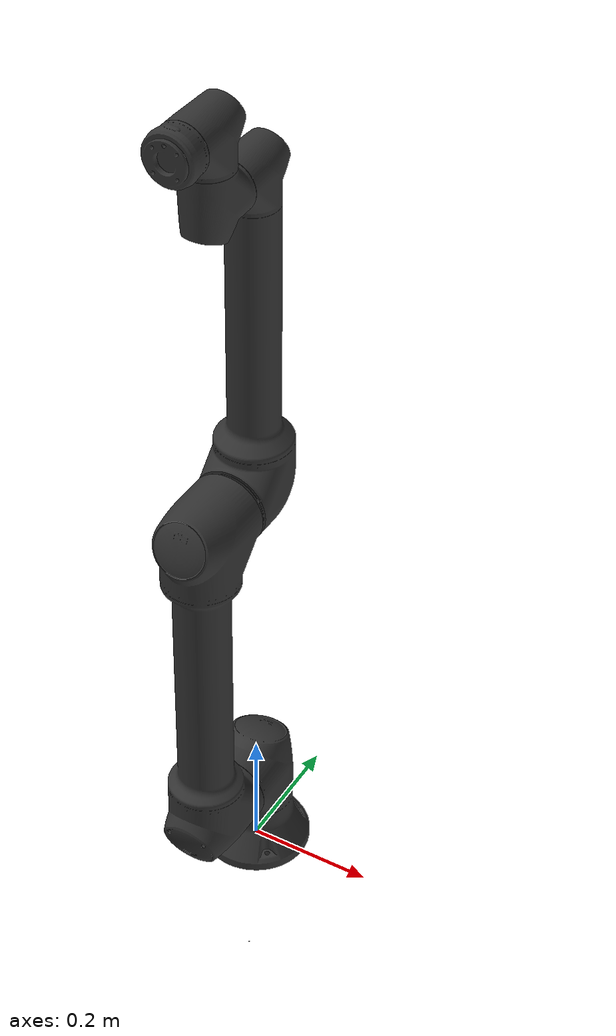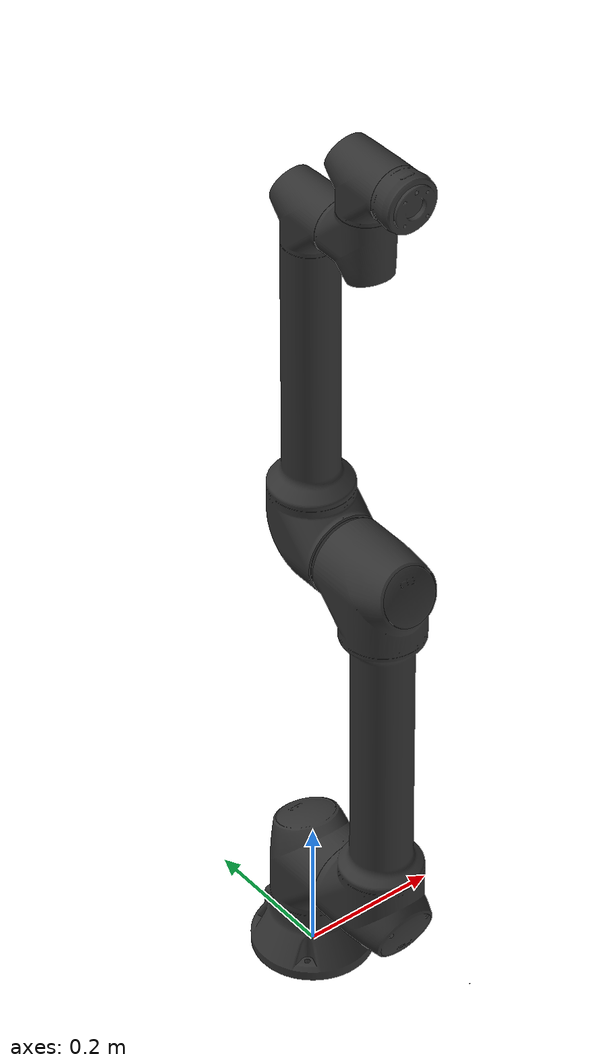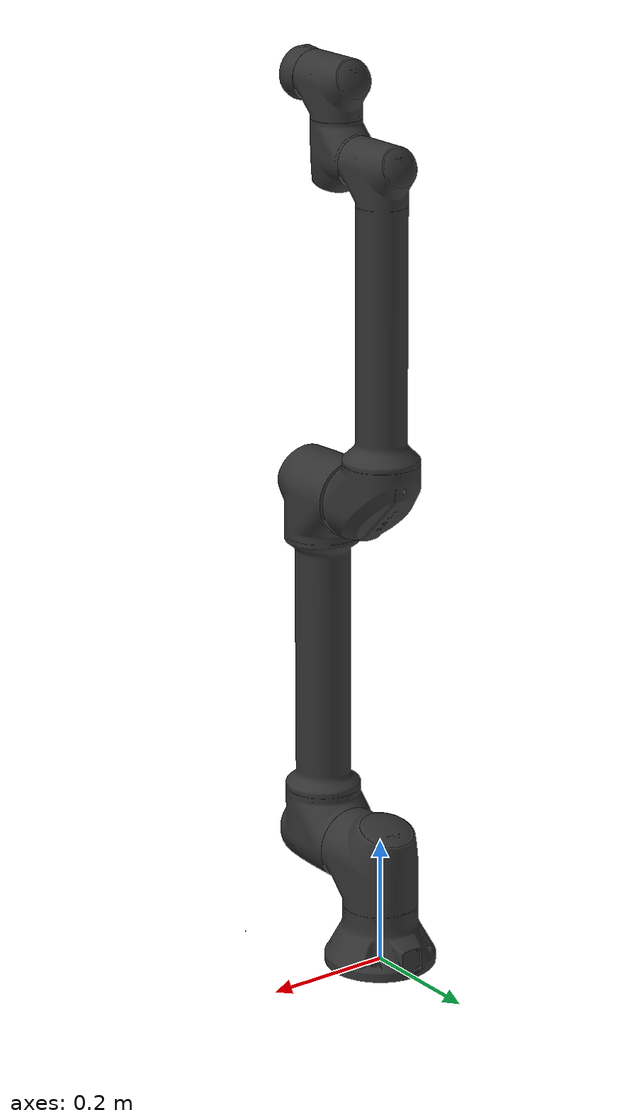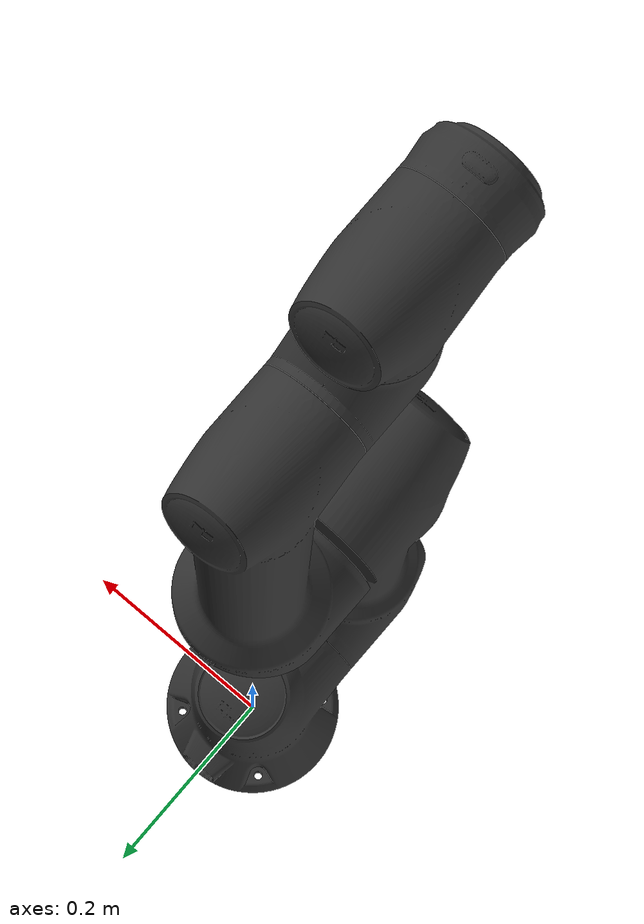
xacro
<?xml version="1.0"?>
<!-- Cobot Robot -->
<robot name="rb3" xmlns:xacro="http://www.ros.org/wiki/xacro">

  <!-- Constants for robot dimensions -->
  <xacro:property name="PI" value="3.1415926535897931"/>

  <xacro:property name="base2module1" value="0.1692"/>
  <xacro:property name="pipe1_len" value="0.5669"/>
  <xacro:property name="pipe2_len" value="0.5224"/>
  <xacro:property name="wrist2wrist" value="0.1107"/>
  <xacro:property name="elbow_offset" value="0.000"/>
  <xacro:property name="base_offset" value="0.000"/>
  <xacro:property name="wrist2tcp" value="0.0967"/>

 <material name="grey">
        <color rgba="0.2 0.2 0.2 1.0" />
 </material>

 <!--======================= Links =========================-->

 <!-- Base Footprint -->
 <link name="base_footprint">
  <visual>
    <origin xyz="0 0 0" rpy="0 0 0"/>
    <geometry>
      <box size="0.001 0.001 0.001"/>
    </geometry>
    <material name="grey"/>
  </visual>
</link>

<!-- Base -->
<link name="Axis_1">
  <visual>
    <origin xyz="0 0 0" rpy="0 0 0"/>
    <geometry>
      <mesh filename="package://rb_description/meshes/visual/RB3/RB3-AXIS-1.dae" scale="0.001 0.001 0.001"/>
    </geometry>
    <material name="grey"/>
  </visual>
  <collision>
    <origin xyz="0 0 0" rpy="0 0 0" />
      <geometry>
        <mesh filename="package://rb_description/meshes/collision/RB3/RB3-AXIS-1.stl" scale="0.001 0.001 0.001"/>
    </geometry>
  </collision>
</link>

<!-- Shoulder -->
<link name="Axis_2">
  <visual>
    <origin xyz="0 0 ${-base2module1}" rpy="0 0 0"/>
    <geometry>
      <mesh filename="package://rb_description/meshes/visual/RB3/RB3-AXIS-2.dae" scale="0.001 0.001 0.001"/>
    </geometry>
    <material name="grey"/>
  </visual>
  <collision>
    <origin xyz="0 0 ${-base2module1}" rpy="0 0 0" />
      <geometry>
        <mesh filename="package://rb_description/meshes/collision/RB3/RB3-AXIS-2.stl" scale="0.001 0.001 0.001"/>
    </geometry>
  </collision>
</link>

<!-- Elbow -->
<link name="Axis_3">
  <visual>
    <origin xyz="0 0 ${-base2module1-pipe1_len} " rpy="0 0 0"/>
    <geometry>
      <mesh filename="package://rb_description/meshes/visual/RB3/RB3-AXIS-3.dae" scale="0.001 0.001 0.001"/>
    </geometry>
    <material name="grey"/>
  </visual>
  <collision>
    <origin xyz="0 0 ${-base2module1-pipe1_len}" rpy="0 0 0" />
      <geometry>
        <mesh filename="package://rb_description/meshes/collision/RB3/RB3-AXIS-3.stl" scale="0.001 0.001 0.001"/>
    </geometry>
  </collision>
</link>

<!-- Wrist1 -->
<link name="Axis_4">
  <visual>
    <origin xyz="0 0 ${-base2module1-pipe1_len-pipe2_len}" rpy="0 0 0"/>
    <geometry>
      <mesh filename="package://rb_description/meshes/visual/RB3/RB3-AXIS-4.dae" scale="0.001 0.001 0.001"/>
    </geometry>
    <material name="grey"/>
  </visual>
  <collision>
    <origin xyz="0 0 ${-base2module1-pipe1_len-pipe2_len}" rpy="0 0 0" />
      <geometry>
        <mesh filename="package://rb_description/meshes/collision/RB3/RB3-AXIS-4.stl" scale="0.001 0.001 0.001"/>
    </geometry>
  </collision>
</link>

<!-- Wrist2 -->
<link name="Axis_5">
  <visual>
    <origin xyz="0 ${wrist2wrist}  ${-base2module1-pipe1_len-pipe2_len}" rpy="0 0 0"/>
    <geometry>
      <mesh filename="package://rb_description/meshes/visual/RB3/RB3-AXIS-5.dae" scale="0.001 0.001 0.001" />
    </geometry>
    <material name="grey"/>
  </visual>
  <collision>
    <origin xyz="0 ${wrist2wrist}  ${-base2module1-pipe1_len-pipe2_len}" rpy="0 0 0" />
      <geometry>
        <mesh filename="package://rb_description/meshes/collision/RB3/RB3-AXIS-5.stl" scale="0.001 0.001 0.001"/>
    </geometry>
  </collision>
</link>

<!-- Wrist3 -->
<link name="Axis_6">
  <visual>
    <origin xyz="0 ${wrist2wrist} ${-base2module1-pipe1_len-pipe2_len-wrist2wrist }" rpy="0 0 0"/>
    <geometry>
      <mesh filename="package://rb_description/meshes/visual/RB3/RB3-AXIS-6.dae" scale="0.001 0.001 0.001"/>
    </geometry>
    <material name="grey"/>
  </visual>
  <collision>
    <origin xyz="0 ${wrist2wrist} ${-base2module1-pipe1_len-pipe2_len-wrist2wrist }" rpy="0 0 0" />
      <geometry>
        <mesh filename="package://rb_description/meshes/collision/RB3/RB3-AXIS-6.stl" scale="0.001 0.001 0.001"/>
    </geometry>
  </collision>
</link>

<!-- TCP -->
<link name="Tool_Center_Point">
  <visual>
     <origin xyz="${wrist2wrist} 0 ${-base2module1-pipe1_len-pipe2_len-wrist2wrist }" rpy="0 0 0"/>
    <geometry>
      <box size="0.001 0.001 0.001"/>
    </geometry>
    <material name="grey"/>
  </visual>
</link>

<!-- Joint -->
<joint name="base" type="continuous">
  <parent link="base_footprint"/>
  <child link="Axis_1"/>
  <origin xyz="0 0 0" rpy="0 0 0"/>
  <axis xyz="0 0 1" />
</joint>

<joint name="shoulder" type="continuous">
  <parent link="Axis_1"/>
  <child link="Axis_2"/>
  <origin xyz="0 0 ${base2module1} " rpy="0 0 0"/>
  <axis xyz="0 1 0"/>
</joint>

<joint name="elbow" type="continuous">
  <parent link="Axis_2"/>
  <child link="Axis_3"/>
  <origin xyz="0 0 ${pipe1_len}" rpy="0 0 0"/>
  <axis xyz="0 1 0"/>
</joint>

<joint name="wrist1" type="continuous">
  <parent link="Axis_3"/>
  <child link="Axis_4"/>
  <origin xyz="0 0 ${pipe2_len}" rpy="0 0 0"/>
  <axis xyz="0 1 0"/>
</joint>

<joint name="wrist2" type="continuous">
  <parent link="Axis_4"/>
  <child link="Axis_5"/>
  <origin xyz="0 ${-wrist2wrist} 0 " rpy="0 0 0"/>
  <axis xyz="0 0 1"/>
</joint>

<joint name="wrist3" type="continuous">
  <parent link="Axis_5"/>
  <child link="Axis_6"/>
  <origin xyz="0 0 ${wrist2wrist}" rpy="0 0 0"/>
  <axis xyz="0 1 0"/>
</joint>

<joint name="Tool_Flange" type="fixed">
  <parent link="Axis_6"/>
  <child link="Tool_Center_Point"/>
  <origin xyz="0 ${-wrist2tcp} 0" rpy="0 0 0"/>
  <axis xyz="0 0 0"/>
</joint>

</robot>
